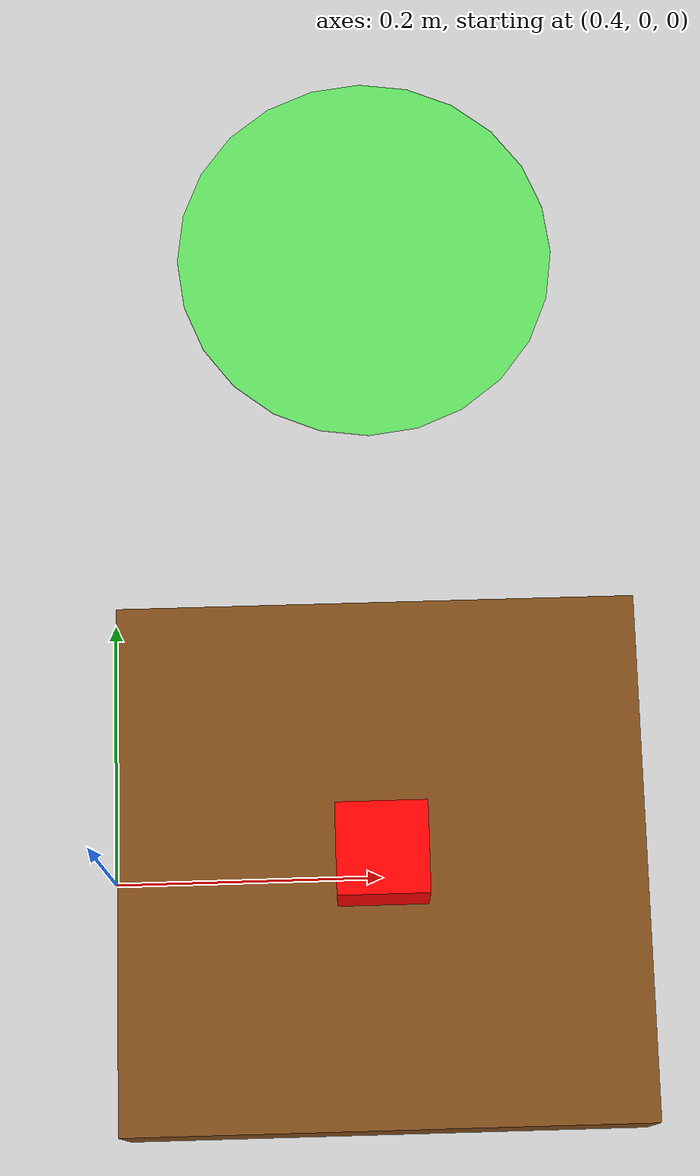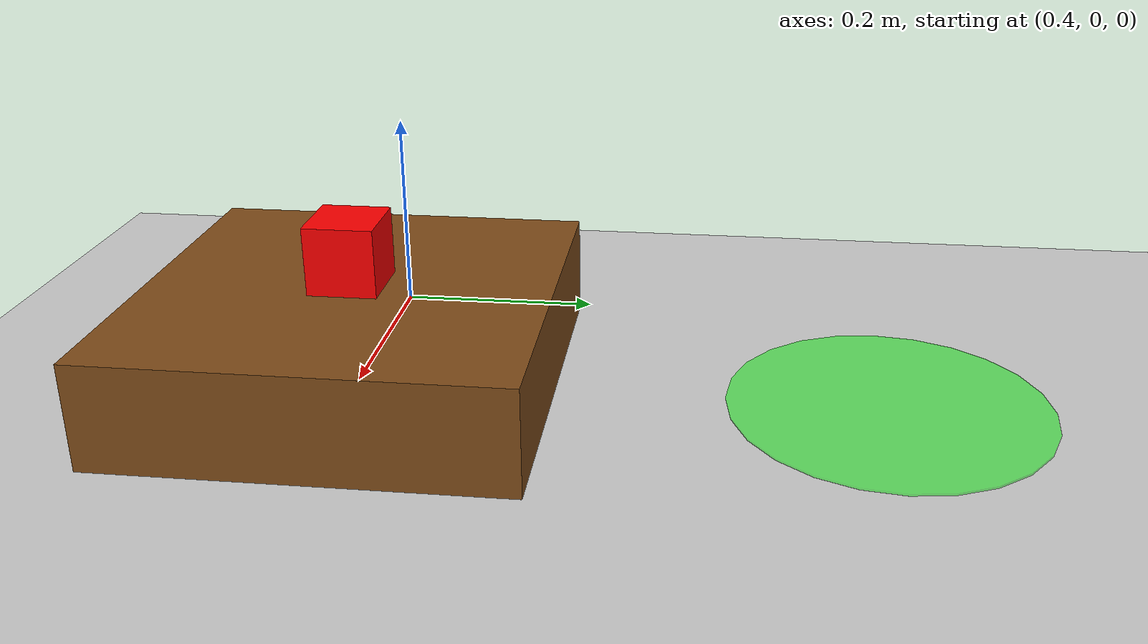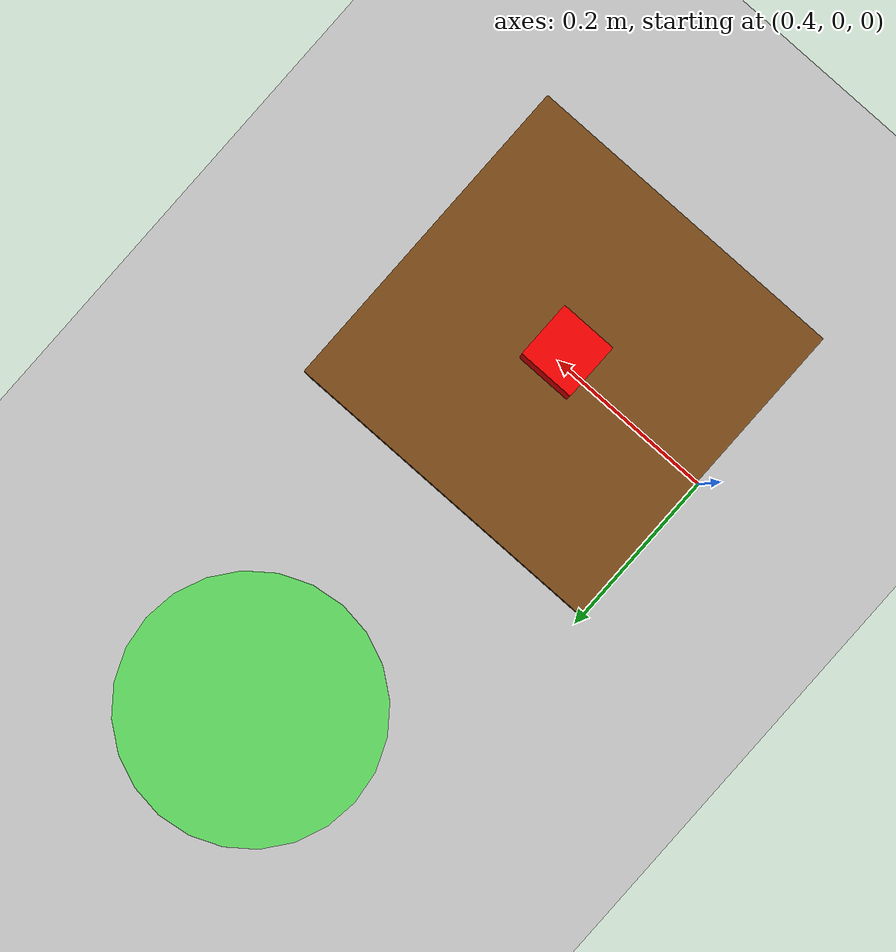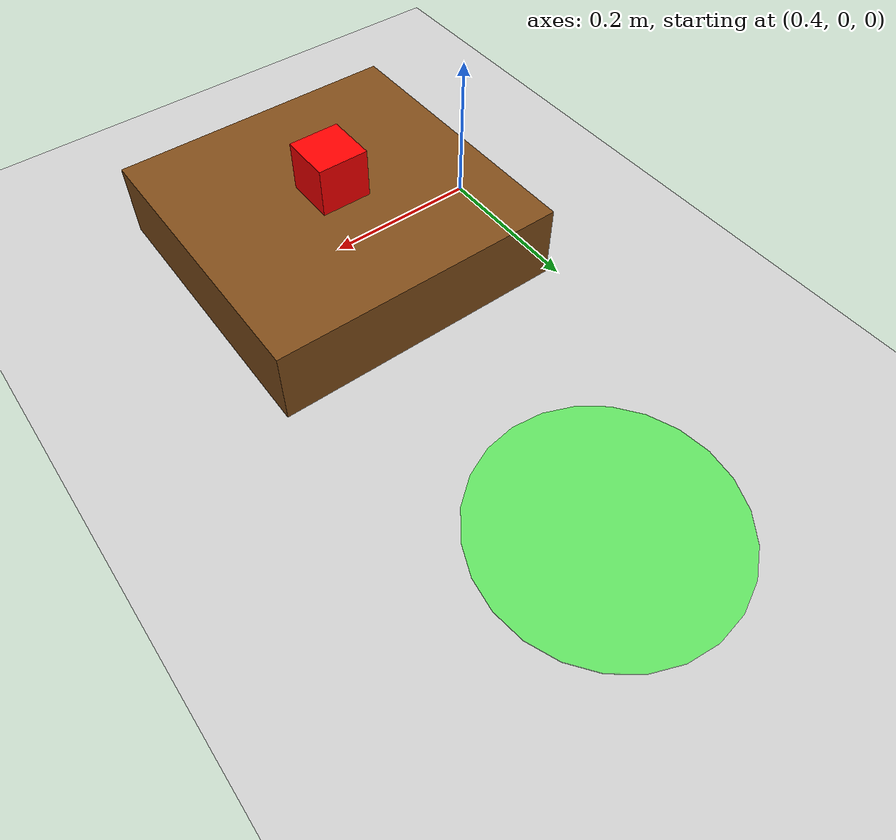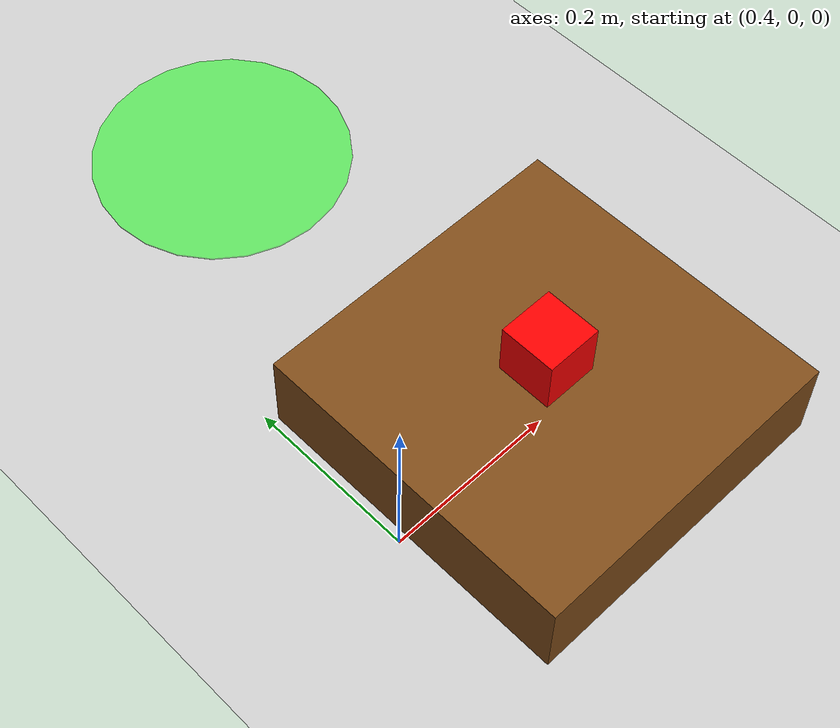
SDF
<?xml version="1.0"?>
<sdf version="1.7">
  <world name="pickplace_world">

    <!-- A world with no plugins gets Gazebo's default set. Listing any plugin replaces that set,
         so the defaults are repeated here next to the sensors system the camera and lidar need. -->
    <plugin filename="gz-sim-physics-system" name="gz::sim::systems::Physics"/>
    <plugin filename="gz-sim-user-commands-system" name="gz::sim::systems::UserCommands"/>
    <plugin filename="gz-sim-scene-broadcaster-system" name="gz::sim::systems::SceneBroadcaster"/>
    <plugin filename="gz-sim-contact-system" name="gz::sim::systems::Contact"/>
    <plugin filename="gz-sim-sensors-system" name="gz::sim::systems::Sensors">
      <render_engine>ogre2</render_engine>
    </plugin>

    <physics name="bullet_physics" type="bullet_featherstone">
      <max_step_size>0.001</max_step_size>
      <real_time_factor>1</real_time_factor>
    </physics>

    <!-- Lighting -->
    <include>
      <uri>
        https://fuel.gazebosim.org/1.0/OpenRobotics/models/Sun
      </uri>
    </include>

    <!-- Ground plane -->
    <include>
      <uri>
        https://fuel.gazebosim.org/1.0/OpenRobotics/models/Ground Plane
      </uri>
    </include>

    <!-- Object Bin (solid platform — pickup object rests on top) -->
    <model name="object_bin">
      <static>true</static>
      <pose>0.6 0 0 0 0 0</pose>
      <link name="platform">
        <pose>0 0 0.05 0 0 0</pose>
        <visual name="visual">
          <geometry>
            <box><size>0.38 0.38 0.10</size></box>
          </geometry>
          <material>
            <ambient>0.5 0.3 0.1 1</ambient>
            <diffuse>0.5 0.3 0.1 1</diffuse>
          </material>
        </visual>
        <collision name="collision">
          <geometry>
            <box><size>0.38 0.38 0.10</size></box>
          </geometry>
        </collision>
      </link>
    </model>

    <!-- Target Zone (placement area) -->
    <model name="target_zone">
      <static>true</static>
      <pose>0.6 0.5 0.001 0 0 0</pose>
      <link name="marker">
        <visual name="visual">
          <geometry>
            <cylinder>
              <radius>0.15</radius>
              <length>0.002</length>
            </cylinder>
          </geometry>
          <material>
            <ambient>0 1 0 0.5</ambient>
            <diffuse>0 1 0 0.5</diffuse>
          </material>
        </visual>
      </link>
    </model>

    <!-- Pickable Object: 6.5x6.5x6.5 cm solid box on top of platform (platform top=0.10m, cube half=0.0325m) -->
    <model name="pickup_object">
      <pose>0.6 0 0.1325 0 0 0</pose>
      <link name="link">
        <inertial>
          <!-- 500g solid cube: side=0.065m
               Ixx=Iyy=Izz = m*(a²+b²)/12 = 0.5*(0.004225+0.004225)/12 ~= 0.000352 -->
          <mass>0.5</mass>
          <inertia>
            <ixx>0.000352</ixx>
            <iyy>0.000352</iyy>
            <izz>0.000352</izz>
          </inertia>
        </inertial>
        <velocity_decay>
          <linear>0.5</linear>
          <angular>1.0</angular>
        </velocity_decay>
        <visual name="visual">
          <geometry>
            <box>
              <size>0.065 0.065 0.065</size>
            </box>
          </geometry>
          <material>
            <ambient>1 0 0 1</ambient>
            <diffuse>1 0 0 1</diffuse>
          </material>
        </visual>
        <collision name="collision">
          <geometry>
            <box>
              <size>0.065 0.065 0.065</size>
            </box>
          </geometry>
          <surface>
            <friction>
              <ode>
                <mu>5.0</mu>
                <mu2>5.0</mu2>
                <slip1>0.0001</slip1>
                <slip2>0.0001</slip2>
              </ode>
              <torsional>
                <coefficient>0.1</coefficient>
                <use_patch_radius>false</use_patch_radius>
                <surface_radius>0.03</surface_radius>
              </torsional>
            </friction>
            <contact>
              <ode>
                <kp>100000</kp>
                <kd>500</kd>
                <max_vel>0.01</max_vel>
                <min_depth>0.001</min_depth>
              </ode>
            </contact>
          </surface>
        </collision>
      </link>
    </model>

    <!-- Static Camera (world-fixed, no jitter) -->
    <model name="static_camera_model">
      <static>true</static>
      <pose>0.6 0.0 0.8 0 1.5708 0</pose>
      <link name="camera_link">
        <sensor name="camera_head" type="rgbd_camera">
          <camera>
            <horizontal_fov>1.5184</horizontal_fov>
            <image>
              <width>424</width>
              <height>240</height>
            </image>
            <clip>
              <near>0.05</near>
              <far>5.0</far>
            </clip>
          </camera>
          <always_on>1</always_on>
          <gz_frame_id>camera_head_depth_optical_frame</gz_frame_id>
          <topic>camera_head</topic>
          <update_rate>5</update_rate>
          <visualize>true</visualize>
        </sensor>
      </link>
    </model>

    <!-- Side camera for verifying lift and place (angled view of the pick and target areas) -->
    <model name="verify_camera_model">
      <static>true</static>
      <pose>1.7 -1.2 0.9 0 0.38 2.45</pose>
      <link name="camera_link">
        <sensor name="verify_cam" type="camera">
          <camera>
            <horizontal_fov>1.2</horizontal_fov>
            <image>
              <width>640</width>
              <height>480</height>
            </image>
            <clip>
              <near>0.05</near>
              <far>8.0</far>
            </clip>
          </camera>
          <always_on>1</always_on>
          <topic>verify_cam</topic>
          <update_rate>10</update_rate>
        </sensor>
      </link>
    </model>

  </world>
</sdf>
